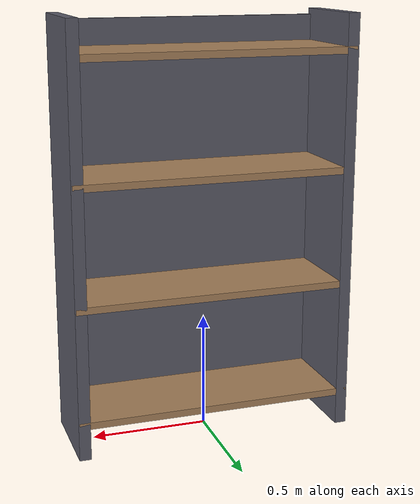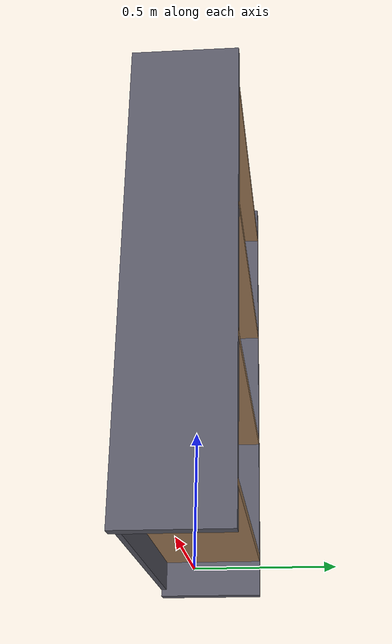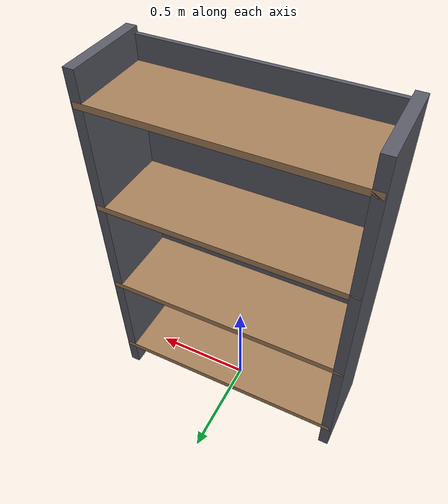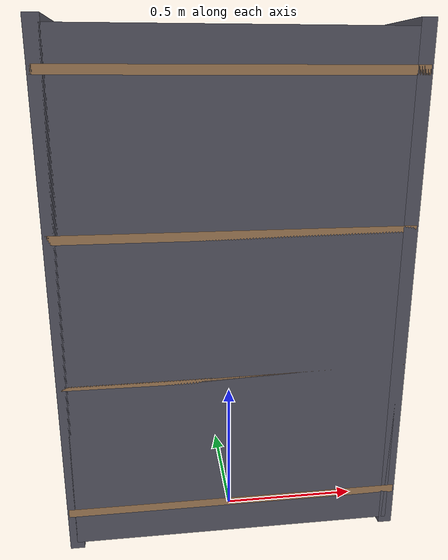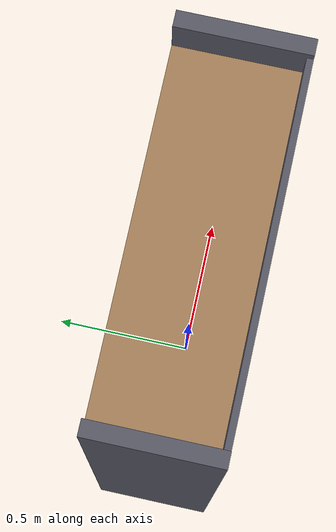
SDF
<?xml version="1.0"?>
<sdf version="1.8">
  <model name="industrial_shelf">
    <static>true</static>
    <link name="link">

      <!-- Left vertical post -->
      <visual name="post_left">
        <pose>-0.58 0 0.9 0 0 0</pose>
        <geometry><box><size>0.05 0.4 1.8</size></box></geometry>
        <material>
          <ambient>0.25 0.25 0.28 1</ambient>
          <diffuse>0.35 0.35 0.4 1</diffuse>
          <specular>0.4 0.4 0.45 1</specular>
        </material>
      </visual>
      <collision name="post_left_col">
        <pose>-0.58 0 0.9 0 0 0</pose>
        <geometry><box><size>0.05 0.4 1.8</size></box></geometry>
      </collision>

      <!-- Right vertical post -->
      <visual name="post_right">
        <pose>0.58 0 0.9 0 0 0</pose>
        <geometry><box><size>0.05 0.4 1.8</size></box></geometry>
        <material>
          <ambient>0.25 0.25 0.28 1</ambient>
          <diffuse>0.35 0.35 0.4 1</diffuse>
          <specular>0.4 0.4 0.45 1</specular>
        </material>
      </visual>
      <collision name="post_right_col">
        <pose>0.58 0 0.9 0 0 0</pose>
        <geometry><box><size>0.05 0.4 1.8</size></box></geometry>
      </collision>

      <!-- Shelf 1 (bottom) -->
      <visual name="shelf_1">
        <pose>0 0 0.15 0 0 0</pose>
        <geometry><box><size>1.2 0.4 0.03</size></box></geometry>
        <material>
          <ambient>0.5 0.4 0.3 1</ambient>
          <diffuse>0.65 0.5 0.35 1</diffuse>
        </material>
      </visual>
      <collision name="shelf_1_col">
        <pose>0 0 0.15 0 0 0</pose>
        <geometry><box><size>1.2 0.4 0.03</size></box></geometry>
      </collision>

      <!-- Shelf 2 -->
      <visual name="shelf_2">
        <pose>0 0 0.65 0 0 0</pose>
        <geometry><box><size>1.2 0.4 0.03</size></box></geometry>
        <material>
          <ambient>0.5 0.4 0.3 1</ambient>
          <diffuse>0.65 0.5 0.35 1</diffuse>
        </material>
      </visual>
      <collision name="shelf_2_col">
        <pose>0 0 0.65 0 0 0</pose>
        <geometry><box><size>1.2 0.4 0.03</size></box></geometry>
      </collision>

      <!-- Shelf 3 -->
      <visual name="shelf_3">
        <pose>0 0 1.15 0 0 0</pose>
        <geometry><box><size>1.2 0.4 0.03</size></box></geometry>
        <material>
          <ambient>0.5 0.4 0.3 1</ambient>
          <diffuse>0.65 0.5 0.35 1</diffuse>
        </material>
      </visual>
      <collision name="shelf_3_col">
        <pose>0 0 1.15 0 0 0</pose>
        <geometry><box><size>1.2 0.4 0.03</size></box></geometry>
      </collision>

      <!-- Shelf 4 (top) -->
      <visual name="shelf_4">
        <pose>0 0 1.65 0 0 0</pose>
        <geometry><box><size>1.2 0.4 0.03</size></box></geometry>
        <material>
          <ambient>0.5 0.4 0.3 1</ambient>
          <diffuse>0.65 0.5 0.35 1</diffuse>
        </material>
      </visual>
      <collision name="shelf_4_col">
        <pose>0 0 1.65 0 0 0</pose>
        <geometry><box><size>1.2 0.4 0.03</size></box></geometry>
      </collision>

      <!-- Back cross brace -->
      <visual name="back_brace">
        <pose>0 -0.19 0.9 0 0 0</pose>
        <geometry><box><size>1.16 0.02 1.75</size></box></geometry>
        <material>
          <ambient>0.25 0.25 0.28 1</ambient>
          <diffuse>0.35 0.35 0.4 1</diffuse>
        </material>
      </visual>
      <collision name="back_brace_col">
        <pose>0 -0.19 0.9 0 0 0</pose>
        <geometry><box><size>1.16 0.02 1.75</size></box></geometry>
      </collision>

      <!-- Inertial (static, but required) -->
      <inertial>
        <mass>30.0</mass>
        <inertia>
          <ixx>10.0</ixx><iyy>10.0</iyy><izz>5.0</izz>
          <ixy>0</ixy><ixz>0</ixz><iyz>0</iyz>
        </inertia>
      </inertial>

    </link>
  </model>
</sdf>
